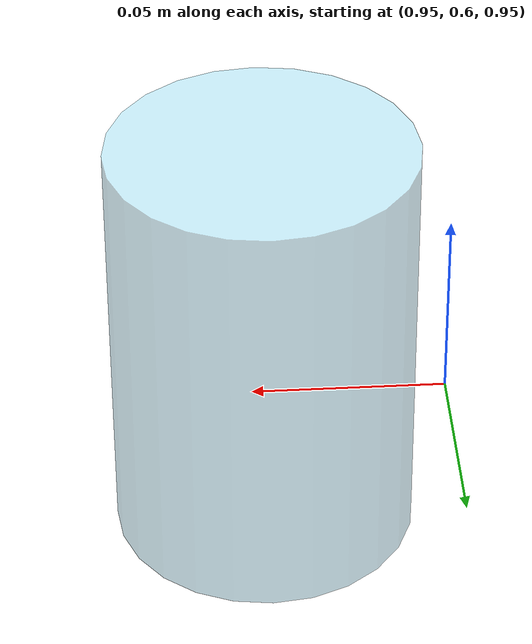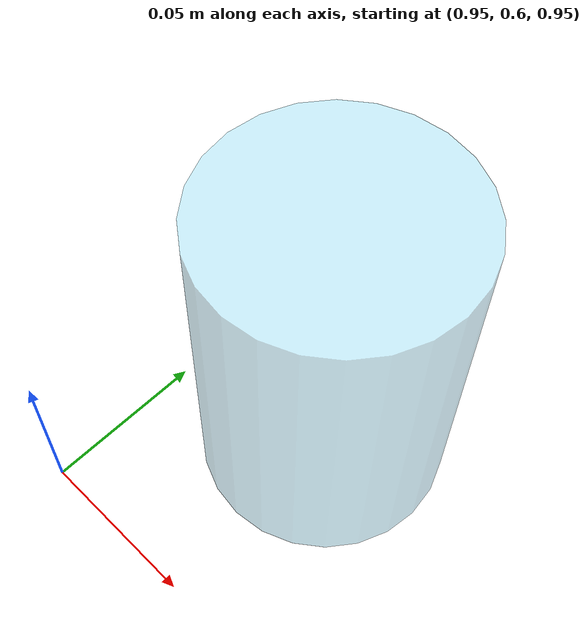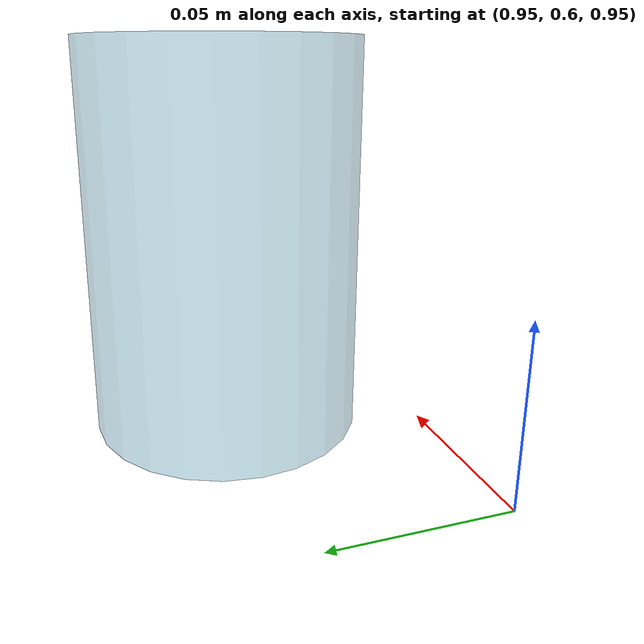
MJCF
<!-- Code generated by Claude -->
<mujoco>
  <worldbody>
    <body name="task_beaker" pos="1.00 0.66 0.962">
      <freejoint name="task_beaker_free"/>
      <geom name="task_beaker_glass" type="cylinder" size="0.035 0.05" pos="0 0 0.05" mass="0.15"
            friction="1.0 0.005 0.0001" rgba="0.55 0.85 0.95 0.45"/>
      <site name="beaker_base" pos="0 0 0" size="0.004" rgba="1 0 0 0" group="4"/>
    </body>
  </worldbody>
</mujoco>
